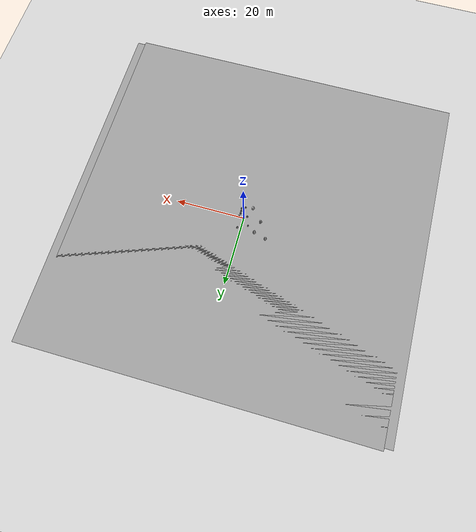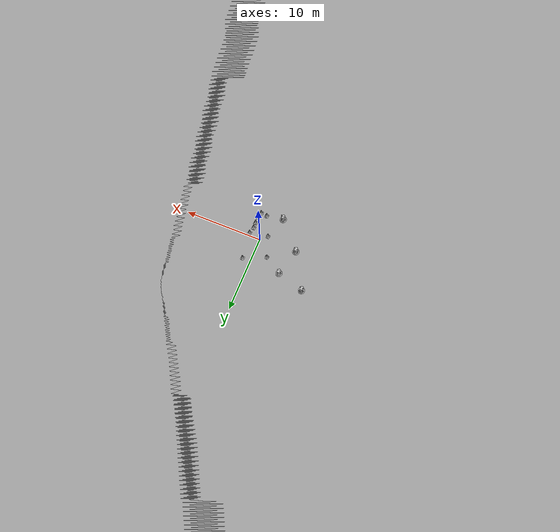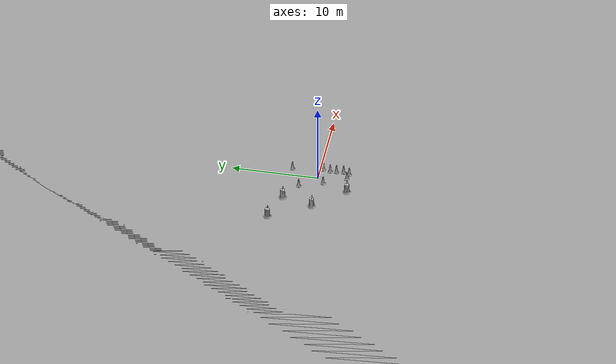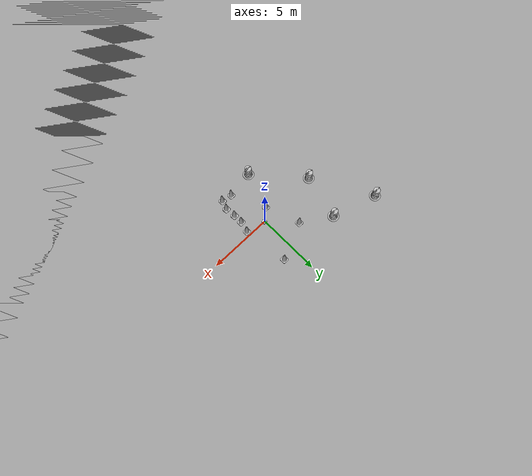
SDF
<sdf version="1.7">
 <world name="default">
  <light name="sun" type="directional">
   <pose>0 0 10 0 -0 0</pose>
   <diffuse>0.8 0.8 0.8 1</diffuse>
   <specular>0.2 0.2 0.2 1</specular>
   <attenuation>
    <range>1000</range>
    <constant>0.9</constant>
    <linear>0.01</linear>
    <quadratic>0.001</quadratic>
   </attenuation>
   <direction>-0.5 0.1 -0.9</direction>
   <spot><inner_angle>0</inner_angle><outer_angle>0</outer_angle><falloff>0</falloff></spot>
  </light>
  <model name="ground_plane">
   <static>1</static>
   <link name="link">
    <collision name="collision">
     <geometry><plane><normal>0 0 1</normal><size>100 100</size></plane></geometry>
     <surface>
      <contact><collide_bitmask>65535</collide_bitmask></contact>
      <friction><ode><mu>100</mu><mu2>50</mu2></ode></friction>
     </surface>
    </collision>
    <visual name="visual">
     <cast_shadows>0</cast_shadows>
     <geometry><plane><normal>0 0 1</normal><size>100 100</size></plane></geometry>
     <material>
      <script><uri>file://media/materials/scripts/gazebo.material</uri><name>Gazebo/Grey</name></script>
     </material>
    </visual>
   </link>
  </model>
  <gravity>0 0 -9.8</gravity>
  <magnetic_field>6e-06 2.3e-05 -4.2e-05</magnetic_field>
  <atmosphere type="adiabatic"/>
  <physics type="ode">
   <max_step_size>0.001</max_step_size>
   <real_time_factor>1</real_time_factor>
   <real_time_update_rate>1000</real_time_update_rate>
  </physics>
  <scene><ambient>0.4 0.4 0.4 1</ambient><background>0.7 0.7 0.7 1</background><shadows>1</shadows></scene>
  <audio><device>default</device></audio>
  <spherical_coordinates>
   <surface_model>EARTH_WGS84</surface_model>
   <latitude_deg>0</latitude_deg>
   <longitude_deg>0</longitude_deg>
   <elevation>0</elevation>
   <heading_deg>0</heading_deg>
  </spherical_coordinates>
  <model name="my_bot">
   <link name="base_link">
    <inertial>
     <pose>0.065 0 0.0625 0 -0 0</pose>
     <mass>0.6</mass>
     <inertia>
      <ixx>0.00525625</ixx>
      <ixy>0</ixy>
      <ixz>0.0005625</ixz>
      <iyy>0.00593125</iyy>
      <iyz>0</iyz>
      <izz>0.008275</izz>
     </inertia>
    </inertial>
    <collision name="base_link_fixed_joint_lump__chassis_collision">
     <pose>0.05 0 0.075 0 -0 0</pose>
     <geometry><box><size>0.3 0.3 0.15</size></box></geometry>
    </collision>
    <collision name="base_link_fixed_joint_lump__caster_wheel_collision_1">
     <pose>0.14 0 0 0 -0 0</pose>
     <geometry><sphere><radius>0.05</radius></sphere></geometry>
     <surface><friction><ode><mu>0.001</mu><mu2>0.001</mu2></ode></friction></surface>
    </collision>
    <visual name="base_link_fixed_joint_lump__chassis_visual">
     <pose>0.05 0 0.075 0 -0 0</pose>
     <geometry><box><size>0.3 0.3 0.15</size></box></geometry>
     <material>
      <script><name>Gazebo/White</name><uri>file://media/materials/scripts/gazebo.material</uri></script>
     </material>
    </visual>
    <visual name="base_link_fixed_joint_lump__caster_wheel_visual_1">
     <pose>0.14 0 0 0 -0 0</pose>
     <geometry><sphere><radius>0.05</radius></sphere></geometry>
     <material>
      <script><name>Gazebo/Black</name><uri>file://media/materials/scripts/gazebo.material</uri></script>
     </material>
    </visual>
   </link>
   <joint name="left_wheel_joint" type="revolute">
    <pose relative_to="base_link">0 0.175 0 -1.5708 0 0</pose>
    <parent>base_link</parent>
    <child>left_wheel</child>
    <axis>
     <xyz>0 0 1</xyz>
     <limit><lower>-1e+16</lower><upper>1e+16</upper></limit>
     <dynamics><spring_reference>0</spring_reference><spring_stiffness>0</spring_stiffness></dynamics>
    </axis>
   </joint>
   <link name="left_wheel">
    <pose relative_to="left_wheel_joint">0 0 0 0 -0 0</pose>
    <inertial>
     <mass>0.1</mass>
     <inertia>
      <ixx>7.58333e-05</ixx>
      <ixy>0</ixy>
      <ixz>0</ixz>
      <iyy>7.58333e-05</iyy>
      <iyz>0</iyz>
      <izz>0.000125</izz>
     </inertia>
    </inertial>
    <collision name="left_wheel_collision">
     <geometry><cylinder><length>0.04</length><radius>0.05</radius></cylinder></geometry>
    </collision>
    <visual name="left_wheel_visual">
     <geometry><cylinder><length>0.04</length><radius>0.05</radius></cylinder></geometry>
     <material>
      <script><name>Gazebo/Blue</name><uri>file://media/materials/scripts/gazebo.material</uri></script>
     </material>
    </visual>
   </link>
   <joint name="right_wheel_joint" type="revolute">
    <pose relative_to="base_link">0 -0.175 0 1.5708 -0 0</pose>
    <parent>base_link</parent>
    <child>right_wheel</child>
    <axis>
     <xyz>0 0 -1</xyz>
     <limit><lower>-1e+16</lower><upper>1e+16</upper></limit>
     <dynamics><spring_reference>0</spring_reference><spring_stiffness>0</spring_stiffness></dynamics>
    </axis>
   </joint>
   <link name="right_wheel">
    <pose relative_to="right_wheel_joint">0 0 0 0 -0 0</pose>
    <inertial>
     <mass>0.1</mass>
     <inertia>
      <ixx>7.58333e-05</ixx>
      <ixy>0</ixy>
      <ixz>0</ixz>
      <iyy>7.58333e-05</iyy>
      <iyz>0</iyz>
      <izz>0.000125</izz>
     </inertia>
    </inertial>
    <collision name="right_wheel_collision">
     <geometry><cylinder><length>0.04</length><radius>0.05</radius></cylinder></geometry>
    </collision>
    <visual name="right_wheel_visual">
     <geometry><cylinder><length>0.04</length><radius>0.05</radius></cylinder></geometry>
     <material>
      <script><name>Gazebo/Blue</name><uri>file://media/materials/scripts/gazebo.material</uri></script>
     </material>
    </visual>
   </link>
   <static>0</static>
   <plugin name="diff_drive" filename="libgazebo_ros_diff_drive.so">
    <left_joint>left_wheel_joint</left_joint>
    <right_joint>right_wheel_joint</right_joint>
    <wheel_separation>0.35</wheel_separation>
    <wheel_diameter>0.1</wheel_diameter>
    <max_wheel_torque>200</max_wheel_torque>
    <max_wheel_acceleration>10.0</max_wheel_acceleration>
    <odometry_frame>odom</odometry_frame>
    <robot_base_frame>base_link</robot_base_frame>
    <publish_odom>1</publish_odom>
    <publish_odom_tf>1</publish_odom_tf>
    <publish_wheel_tf>1</publish_wheel_tf>
   </plugin>
   <pose>0.026439 0.000118 0.050001 -0 1.9e-05 0.007606</pose>
  </model>
  <model name="ground_plane_0">
   <static>1</static>
   <link name="link">
    <collision name="collision">
     <geometry><plane><normal>0 0 1</normal><size>100 100</size></plane></geometry>
     <surface>
      <contact><collide_bitmask>65535</collide_bitmask></contact>
      <friction><ode><mu>100</mu><mu2>50</mu2></ode></friction>
     </surface>
    </collision>
    <visual name="visual">
     <cast_shadows>0</cast_shadows>
     <geometry><plane><normal>0 0 1</normal><size>100 100</size></plane></geometry>
     <material>
      <script><uri>file://media/materials/scripts/gazebo.material</uri><name>Gazebo/Grey</name></script>
     </material>
    </visual>
   </link>
   <pose>-2.31428 -0.791776 0 0 -0 0</pose>
  </model>
  <model name="ground_plane_1">
   <static>1</static>
   <link name="link">
    <collision name="collision">
     <geometry><plane><normal>0 0 1</normal><size>100 100</size></plane></geometry>
     <surface>
      <contact><collide_bitmask>65535</collide_bitmask></contact>
      <friction><ode><mu>100</mu><mu2>50</mu2></ode></friction>
     </surface>
    </collision>
    <visual name="visual">
     <cast_shadows>0</cast_shadows>
     <geometry><plane><normal>0 0 1</normal><size>100 100</size></plane></geometry>
     <material>
      <script><uri>file://media/materials/scripts/gazebo.material</uri><name>Gazebo/Grey</name></script>
     </material>
    </visual>
   </link>
  </model>
  <model name="ground_plane_2">
   <static>1</static>
   <link name="link">
    <collision name="collision">
     <geometry><plane><normal>0 0 1</normal><size>100 100</size></plane></geometry>
     <surface>
      <contact><collide_bitmask>65535</collide_bitmask></contact>
      <friction><ode><mu>100</mu><mu2>50</mu2></ode></friction>
     </surface>
    </collision>
    <visual name="visual">
     <cast_shadows>0</cast_shadows>
     <geometry><plane><normal>0 0 1</normal><size>100 100</size></plane></geometry>
     <material>
      <script><uri>file://media/materials/scripts/gazebo.material</uri><name>Gazebo/Grey</name></script>
     </material>
    </visual>
   </link>
  </model>
  <model name="Construction Barrel">
   <link name="link">
    <inertial>
     <pose>0 0 0.4 0 -0 0</pose>
     <mass>500</mass>
     <inertia><ixx>51.2096</ixx><iyy>51.2096</iyy><izz>25</izz><ixy>0</ixy><ixz>0</ixz><iyz>0</iyz></inertia>
    </inertial>
    <collision name="collision">
     <geometry><mesh><uri>model://construction_barrel/meshes/construction_barrel.dae</uri></mesh></geometry>
    </collision>
    <visual name="visual">
     <geometry><mesh><uri>model://construction_barrel/meshes/construction_barrel.dae</uri></mesh></geometry>
    </visual>
   </link>
   <pose>-4.90481 -0.20202 0 0 -0 0.000206</pose>
  </model>
  <model name="Construction Cone">
   <link name="link">
    <collision name="collision">
     <geometry>
      <mesh><scale>10 10 10</scale><uri>model://construction_cone/meshes/construction_cone.dae</uri></mesh>
     </geometry>
    </collision>
    <visual name="visual">
     <geometry>
      <mesh><scale>10 10 10</scale><uri>model://construction_cone/meshes/construction_cone.dae</uri></mesh>
     </geometry>
    </visual>
    <inertial>
     <inertia><ixx>1</ixx><ixy>0</ixy><ixz>0</ixz><iyy>1</iyy><iyz>0</iyz><izz>1</izz></inertia>
     <mass>1</mass>
    </inertial>
   </link>
   <pose>-0.829017 -0.766956 -1e-05 0 -0 0</pose>
  </model>
  <model name="Construction Barrel_0">
   <link name="link">
    <inertial>
     <pose>0 0 0.4 0 -0 0</pose>
     <mass>500</mass>
     <inertia><ixx>51.2096</ixx><iyy>51.2096</iyy><izz>25</izz><ixy>0</ixy><ixz>0</ixz><iyz>0</iyz></inertia>
    </inertial>
    <collision name="collision">
     <geometry><mesh><uri>model://construction_barrel/meshes/construction_barrel.dae</uri></mesh></geometry>
    </collision>
    <visual name="visual">
     <geometry><mesh><uri>model://construction_barrel/meshes/construction_barrel.dae</uri></mesh></geometry>
    </visual>
   </link>
   <pose>-7.51285 4.35775 1e-06 3e-06 2e-06 0.000194</pose>
  </model>
  <model name="Construction Cone_clone">
   <link name="link">
    <collision name="collision">
     <geometry>
      <mesh><scale>10 10 10</scale><uri>model://construction_cone/meshes/construction_cone.dae</uri></mesh>
     </geometry>
    </collision>
    <visual name="visual">
     <geometry>
      <mesh><scale>10 10 10</scale><uri>model://construction_cone/meshes/construction_cone.dae</uri></mesh>
     </geometry>
    </visual>
    <inertial>
     <inertia><ixx>1</ixx><ixy>0</ixy><ixz>0</ixz><iyy>1</iyy><iyz>0</iyz><izz>1</izz></inertia>
     <mass>1</mass>
    </inertial>
   </link>
   <pose>-1.76361 1.8901 -9e-06 1e-06 1e-06 0</pose>
  </model>
  <model name="Construction Cone_clone_0">
   <link name="link">
    <collision name="collision">
     <geometry>
      <mesh><scale>10 10 10</scale><uri>model://construction_cone/meshes/construction_cone.dae</uri></mesh>
     </geometry>
    </collision>
    <visual name="visual">
     <geometry>
      <mesh><scale>10 10 10</scale><uri>model://construction_cone/meshes/construction_cone.dae</uri></mesh>
     </geometry>
    </visual>
    <inertial>
     <inertia><ixx>1</ixx><ixy>0</ixy><ixz>0</ixz><iyy>1</iyy><iyz>0</iyz><izz>1</izz></inertia>
     <mass>1</mass>
    </inertial>
   </link>
   <pose>1.54781 -0.355721 -9e-06 1e-06 -0 0</pose>
  </model>
  <model name="Construction Cone_clone_1">
   <link name="link">
    <collision name="collision">
     <geometry>
      <mesh><scale>10 10 10</scale><uri>model://construction_cone/meshes/construction_cone.dae</uri></mesh>
     </geometry>
    </collision>
    <visual name="visual">
     <geometry>
      <mesh><scale>10 10 10</scale><uri>model://construction_cone/meshes/construction_cone.dae</uri></mesh>
     </geometry>
    </visual>
    <inertial>
     <inertia><ixx>1</ixx><ixy>0</ixy><ixz>0</ixz><iyy>1</iyy><iyz>0</iyz><izz>1</izz></inertia>
     <mass>1</mass>
    </inertial>
   </link>
   <pose>1.34365 -1.19203 -1e-05 0 1e-06 0</pose>
  </model>
  <model name="Construction Cone_clone_2">
   <link name="link">
    <collision name="collision">
     <geometry>
      <mesh><scale>10 10 10</scale><uri>model://construction_cone/meshes/construction_cone.dae</uri></mesh>
     </geometry>
    </collision>
    <visual name="visual">
     <geometry>
      <mesh><scale>10 10 10</scale><uri>model://construction_cone/meshes/construction_cone.dae</uri></mesh>
     </geometry>
    </visual>
    <inertial>
     <inertia><ixx>1</ixx><ixy>0</ixy><ixz>0</ixz><iyy>1</iyy><iyz>0</iyz><izz>1</izz></inertia>
     <mass>1</mass>
    </inertial>
   </link>
   <pose>1.35752 -1.92524 -8e-06 0 -1e-06 0</pose>
  </model>
  <model name="Construction Cone_clone_3">
   <link name="link">
    <collision name="collision">
     <geometry>
      <mesh><scale>10 10 10</scale><uri>model://construction_cone/meshes/construction_cone.dae</uri></mesh>
     </geometry>
    </collision>
    <visual name="visual">
     <geometry>
      <mesh><scale>10 10 10</scale><uri>model://construction_cone/meshes/construction_cone.dae</uri></mesh>
     </geometry>
    </visual>
    <inertial>
     <inertia><ixx>1</ixx><ixy>0</ixy><ixz>0</ixz><iyy>1</iyy><iyz>0</iyz><izz>1</izz></inertia>
     <mass>1</mass>
    </inertial>
   </link>
   <pose>1.4354 -2.73769 -1e-05 1e-06 -0 0</pose>
  </model>
  <model name="Construction Cone_clone_4">
   <link name="link">
    <collision name="collision">
     <geometry>
      <mesh><scale>10 10 10</scale><uri>model://construction_cone/meshes/construction_cone.dae</uri></mesh>
     </geometry>
    </collision>
    <visual name="visual">
     <geometry>
      <mesh><scale>10 10 10</scale><uri>model://construction_cone/meshes/construction_cone.dae</uri></mesh>
     </geometry>
    </visual>
    <inertial>
     <inertia><ixx>1</ixx><ixy>0</ixy><ixz>0</ixz><iyy>1</iyy><iyz>0</iyz><izz>1</izz></inertia>
     <mass>1</mass>
    </inertial>
   </link>
   <pose>1.06528 3.15736 -0 -1e-06 -0 -0</pose>
  </model>
  <model name="Construction Cone_clone_3_clone">
   <link name="link">
    <collision name="collision">
     <geometry>
      <mesh><scale>10 10 10</scale><uri>model://construction_cone/meshes/construction_cone.dae</uri></mesh>
     </geometry>
    </collision>
    <visual name="visual">
     <geometry>
      <mesh><scale>10 10 10</scale><uri>model://construction_cone/meshes/construction_cone.dae</uri></mesh>
     </geometry>
    </visual>
    <inertial>
     <inertia><ixx>1</ixx><ixy>0</ixy><ixz>0</ixz><iyy>1</iyy><iyz>0</iyz><izz>1</izz></inertia>
     <mass>1</mass>
    </inertial>
   </link>
   <pose>0.391954 -3.31814 -1e-05 1e-06 -0 0</pose>
  </model>
  <model name="Construction Cone_clone_3_clone_clone">
   <link name="link">
    <collision name="collision">
     <geometry>
      <mesh><scale>10 10 10</scale><uri>model://construction_cone/meshes/construction_cone.dae</uri></mesh>
     </geometry>
    </collision>
    <visual name="visual">
     <geometry>
      <mesh><scale>10 10 10</scale><uri>model://construction_cone/meshes/construction_cone.dae</uri></mesh>
     </geometry>
    </visual>
    <inertial>
     <inertia><ixx>1</ixx><ixy>0</ixy><ixz>0</ixz><iyy>1</iyy><iyz>0</iyz><izz>1</izz></inertia>
     <mass>1</mass>
    </inertial>
   </link>
   <pose>1.19744 -3.43911 -7e-06 -0 -0 -0</pose>
  </model>
  <model name="Construction Barrel_clone">
   <link name="link">
    <inertial>
     <pose>0 0 0.4 0 -0 0</pose>
     <mass>500</mass>
     <inertia><ixx>51.2096</ixx><iyy>51.2096</iyy><izz>25</izz><ixy>0</ixy><ixz>0</ixz><iyz>0</iyz></inertia>
    </inertial>
    <collision name="collision">
     <geometry><mesh><uri>model://construction_barrel/meshes/construction_barrel.dae</uri></mesh></geometry>
    </collision>
    <visual name="visual">
     <geometry><mesh><uri>model://construction_barrel/meshes/construction_barrel.dae</uri></mesh></geometry>
    </visual>
   </link>
   <pose>-4.01528 3.30576 -1e-06 -1e-06 3e-06 0.000197</pose>
  </model>
  <model name="Construction Barrel_clone_0">
   <link name="link">
    <inertial>
     <pose>0 0 0.4 0 -0 0</pose>
     <mass>500</mass>
     <inertia><ixx>51.2096</ixx><iyy>51.2096</iyy><izz>25</izz><ixy>0</ixy><ixz>0</ixz><iyz>0</iyz></inertia>
    </inertial>
    <collision name="collision">
     <geometry><mesh><uri>model://construction_barrel/meshes/construction_barrel.dae</uri></mesh></geometry>
    </collision>
    <visual name="visual">
     <geometry><mesh><uri>model://construction_barrel/meshes/construction_barrel.dae</uri></mesh></geometry>
    </visual>
   </link>
   <pose>-1.75981 -3.6744 0 0 -0 0.0002</pose>
  </model>
 </world>
</sdf>
